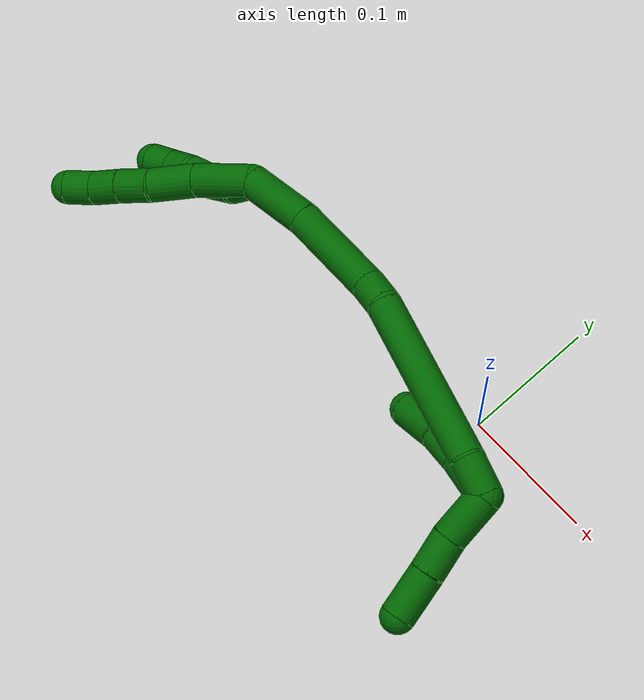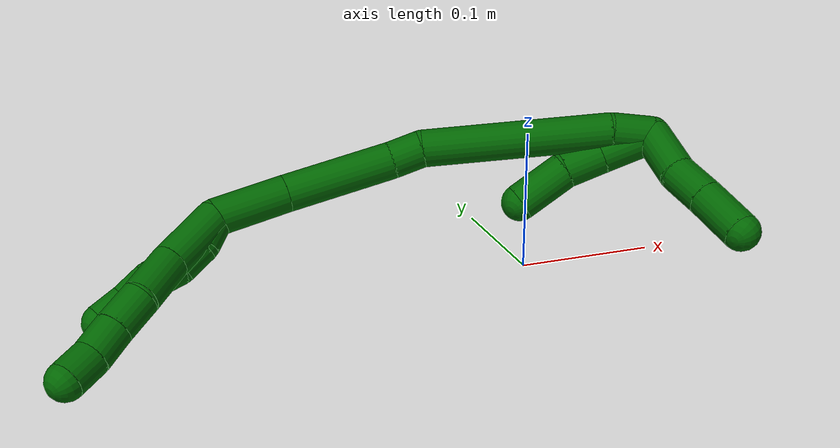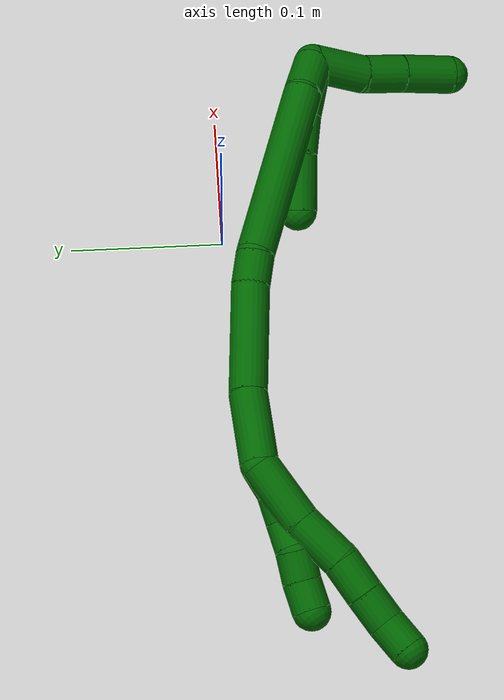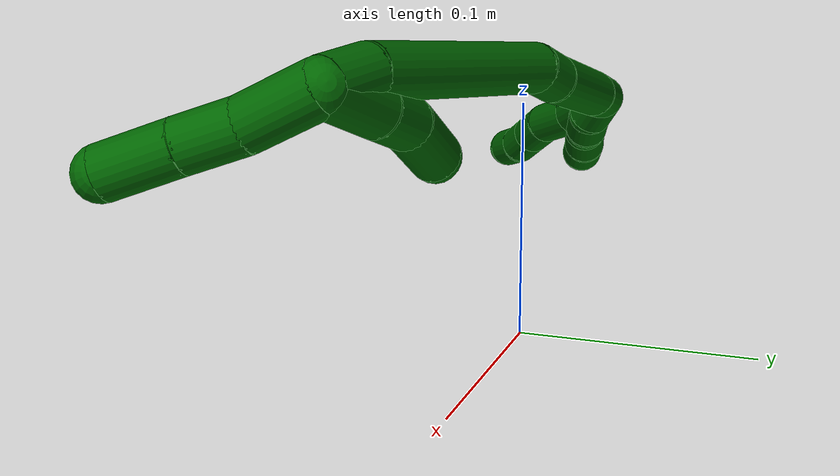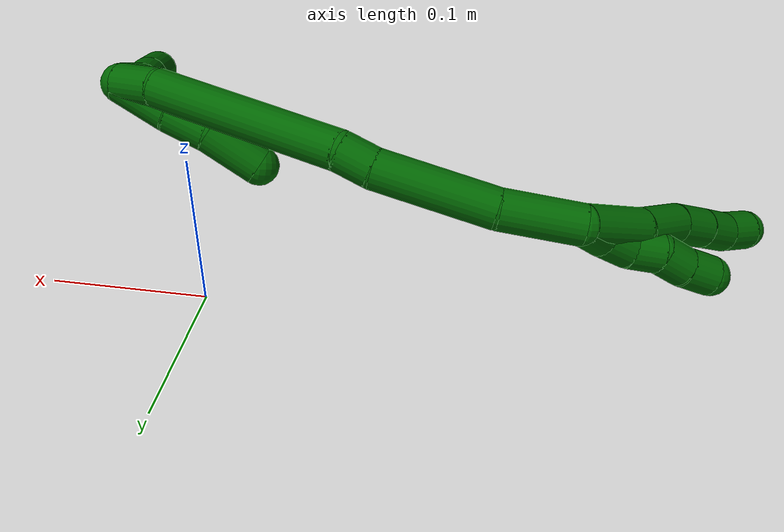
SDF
<sdf version="1.7">
 <world name="default">
  <model name="6">
   <static>0</static>
   <link name="6">
    <collision name="collision-cylinder-e_1_2_8">
     <pose>0.000996 -0.002364 0.022287 0.105687 0.044422 0.00235</pose>
     <geometry><cylinder><radius>0.0125</radius><length>0.044869</length></cylinder></geometry>
     <surface>
      <friction><ode><mu>1.16</mu><mu2>1.16</mu2><slip1>0</slip1><slip2>0</slip2></ode></friction>
      <contact><ode><kp>1e+06</kp><kd>1</kd><max_vel>0</max_vel><min_depth>0.001</min_depth></ode></contact>
     </surface>
    </collision>
    <visual name="visual-cylinder-e_1_2_8">
     <pose>0.000996 -0.002364 0.022287 0.105687 0.044422 0.00235</pose>
     <geometry><cylinder><radius>0.0125</radius><length>0.044869</length></cylinder></geometry>
     <material><ambient>0 0.392157 0.003922 1</ambient></material>
    </visual>
    <collision name="collision-cylinder-e_2_8_9">
     <pose>0.005662 -0.00578 0.061475 0.062155 0.213391 0.006659</pose>
     <geometry><cylinder><radius>0.0125</radius><length>0.034652</length></cylinder></geometry>
     <surface>
      <friction><ode><mu>1.16</mu><mu2>1.16</mu2><slip1>0</slip1><slip2>0</slip2></ode></friction>
      <contact><ode><kp>1e+06</kp><kd>1</kd><max_vel>0</max_vel><min_depth>0.001</min_depth></ode></contact>
     </surface>
    </collision>
    <visual name="visual-cylinder-e_2_8_9">
     <pose>0.005662 -0.00578 0.061475 0.062155 0.213391 0.006659</pose>
     <geometry><cylinder><radius>0.0125</radius><length>0.034652</length></cylinder></geometry>
     <material><ambient>0 0.392157 0.003922 1</ambient></material>
    </visual>
    <collision name="collision-cylinder-e_3_9_10">
     <pose>0.009977 -0.00915 0.090964 0.182076 0.050389 0.004601</pose>
     <geometry><cylinder><radius>0.0125</radius><length>0.025632</length></cylinder></geometry>
     <surface>
      <friction><ode><mu>1.16</mu><mu2>1.16</mu2><slip1>0</slip1><slip2>0</slip2></ode></friction>
      <contact><ode><kp>1e+06</kp><kd>1</kd><max_vel>0</max_vel><min_depth>0.001</min_depth></ode></contact>
     </surface>
    </collision>
    <visual name="visual-cylinder-e_3_9_10">
     <pose>0.009977 -0.00915 0.090964 0.182076 0.050389 0.004601</pose>
     <geometry><cylinder><radius>0.0125</radius><length>0.025632</length></cylinder></geometry>
     <material><ambient>0 0.392157 0.003922 1</ambient></material>
    </visual>
    <collision name="collision-cylinder-e_4_10_11">
     <pose>0.011585 -0.013888 0.114718 0.213466 0.084118 0.009018</pose>
     <geometry><cylinder><radius>0.0125</radius><length>0.022931</length></cylinder></geometry>
     <surface>
      <friction><ode><mu>1.16</mu><mu2>1.16</mu2><slip1>0</slip1><slip2>0</slip2></ode></friction>
      <contact><ode><kp>1e+06</kp><kd>1</kd><max_vel>0</max_vel><min_depth>0.001</min_depth></ode></contact>
     </surface>
    </collision>
    <visual name="visual-cylinder-e_4_10_11">
     <pose>0.011585 -0.013888 0.114718 0.213466 0.084118 0.009018</pose>
     <geometry><cylinder><radius>0.0125</radius><length>0.022931</length></cylinder></geometry>
     <material><ambient>0 0.392157 0.003922 1</ambient></material>
    </visual>
    <collision name="collision-cylinder-e_5_11_6">
     <pose>0.013509 -0.016515 0.136797 0.018921 0.087789 0.000831</pose>
     <geometry><cylinder><radius>0.0125</radius><length>0.021915</length></cylinder></geometry>
     <surface>
      <friction><ode><mu>1.16</mu><mu2>1.16</mu2><slip1>0</slip1><slip2>0</slip2></ode></friction>
      <contact><ode><kp>1e+06</kp><kd>1</kd><max_vel>0</max_vel><min_depth>0.001</min_depth></ode></contact>
     </surface>
    </collision>
    <visual name="visual-cylinder-e_5_11_6">
     <pose>0.013509 -0.016515 0.136797 0.018921 0.087789 0.000831</pose>
     <geometry><cylinder><radius>0.0125</radius><length>0.021915</length></cylinder></geometry>
     <material><ambient>0 0.392157 0.003922 1</ambient></material>
    </visual>
    <collision name="collision-cylinder-e_1_2_12">
     <pose>0.000753 -0.004451 0.008923 0.462718 0.07534 0.017756</pose>
     <geometry><cylinder><radius>0.0125</radius><length>0.02</length></cylinder></geometry>
     <surface>
      <friction><ode><mu>1.16</mu><mu2>1.16</mu2><slip1>0</slip1><slip2>0</slip2></ode></friction>
      <contact><ode><kp>1e+06</kp><kd>1</kd><max_vel>0</max_vel><min_depth>0.001</min_depth></ode></contact>
     </surface>
    </collision>
    <visual name="visual-cylinder-e_1_2_12">
     <pose>0.000753 -0.004451 0.008923 0.462718 0.07534 0.017756</pose>
     <geometry><cylinder><radius>0.0125</radius><length>0.02</length></cylinder></geometry>
     <material><ambient>0 0.392157 0.003922 1</ambient></material>
    </visual>
    <collision name="collision-cylinder-e_2_12_13">
     <pose>-0.000735 -0.01185 0.027135 0.307287 -0.225923 -0.035133</pose>
     <geometry><cylinder><radius>0.0125</radius><length>0.02</length></cylinder></geometry>
     <surface>
      <friction><ode><mu>1.16</mu><mu2>1.16</mu2><slip1>0</slip1><slip2>0</slip2></ode></friction>
      <contact><ode><kp>1e+06</kp><kd>1</kd><max_vel>0</max_vel><min_depth>0.001</min_depth></ode></contact>
     </surface>
    </collision>
    <visual name="visual-cylinder-e_2_12_13">
     <pose>-0.000735 -0.01185 0.027135 0.307287 -0.225923 -0.035133</pose>
     <geometry><cylinder><radius>0.0125</radius><length>0.02</length></cylinder></geometry>
     <material><ambient>0 0.392157 0.003922 1</ambient></material>
    </visual>
    <collision name="collision-cylinder-e_3_13_14">
     <pose>-0.006047 -0.014811 0.045941 0.001328 -0.312311 -0.000209</pose>
     <geometry><cylinder><radius>0.0125</radius><length>0.02</length></cylinder></geometry>
     <surface>
      <friction><ode><mu>1.16</mu><mu2>1.16</mu2><slip1>0</slip1><slip2>0</slip2></ode></friction>
      <contact><ode><kp>1e+06</kp><kd>1</kd><max_vel>0</max_vel><min_depth>0.001</min_depth></ode></contact>
     </surface>
    </collision>
    <visual name="visual-cylinder-e_3_13_14">
     <pose>-0.006047 -0.014811 0.045941 0.001328 -0.312311 -0.000209</pose>
     <geometry><cylinder><radius>0.0125</radius><length>0.02</length></cylinder></geometry>
     <material><ambient>0 0.392157 0.003922 1</ambient></material>
    </visual>
    <collision name="collision-cylinder-e_4_14_15">
     <pose>-0.012065 -0.018233 0.064385 0.364797 -0.298928 -0.055537</pose>
     <geometry><cylinder><radius>0.0125</radius><length>0.02</length></cylinder></geometry>
     <surface>
      <friction><ode><mu>1.16</mu><mu2>1.16</mu2><slip1>0</slip1><slip2>0</slip2></ode></friction>
      <contact><ode><kp>1e+06</kp><kd>1</kd><max_vel>0</max_vel><min_depth>0.001</min_depth></ode></contact>
     </surface>
    </collision>
    <visual name="visual-cylinder-e_4_14_15">
     <pose>-0.012065 -0.018233 0.064385 0.364797 -0.298928 -0.055537</pose>
     <geometry><cylinder><radius>0.0125</radius><length>0.02</length></cylinder></geometry>
     <material><ambient>0 0.392157 0.003922 1</ambient></material>
    </visual>
    <collision name="collision-cylinder-e_5_15_5">
     <pose>-0.017517 -0.023544 0.082804 0.197789 -0.253447 -0.025281</pose>
     <geometry><cylinder><radius>0.0125</radius><length>0.02</length></cylinder></geometry>
     <surface>
      <friction><ode><mu>1.16</mu><mu2>1.16</mu2><slip1>0</slip1><slip2>0</slip2></ode></friction>
      <contact><ode><kp>1e+06</kp><kd>1</kd><max_vel>0</max_vel><min_depth>0.001</min_depth></ode></contact>
     </surface>
    </collision>
    <visual name="visual-cylinder-e_5_15_5">
     <pose>-0.017517 -0.023544 0.082804 0.197789 -0.253447 -0.025281</pose>
     <geometry><cylinder><radius>0.0125</radius><length>0.02</length></cylinder></geometry>
     <material><ambient>0 0.392157 0.003922 1</ambient></material>
    </visual>
    <collision name="collision-cylinder-e_1_2_16">
     <pose>0.0114 -0.001626 -0.022138 3.06829 0.474426 2.84056</pose>
     <geometry><cylinder><radius>0.0125</radius><length>0.049908</length></cylinder></geometry>
     <surface>
      <friction><ode><mu>1.16</mu><mu2>1.16</mu2><slip1>0</slip1><slip2>0</slip2></ode></friction>
      <contact><ode><kp>1e+06</kp><kd>1</kd><max_vel>0</max_vel><min_depth>0.001</min_depth></ode></contact>
     </surface>
    </collision>
    <visual name="visual-cylinder-e_1_2_16">
     <pose>0.0114 -0.001626 -0.022138 3.06829 0.474426 2.84056</pose>
     <geometry><cylinder><radius>0.0125</radius><length>0.049908</length></cylinder></geometry>
     <material><ambient>0 0.392157 0.003922 1</ambient></material>
    </visual>
    <collision name="collision-cylinder-e_2_16_17">
     <pose>0.044606 -0.003194 -0.074063 -3.13968 0.631956 -3.13573</pose>
     <geometry><cylinder><radius>0.0125</radius><length>0.073831</length></cylinder></geometry>
     <surface>
      <friction><ode><mu>1.16</mu><mu2>1.16</mu2><slip1>0</slip1><slip2>0</slip2></ode></friction>
      <contact><ode><kp>1e+06</kp><kd>1</kd><max_vel>0</max_vel><min_depth>0.001</min_depth></ode></contact>
     </surface>
    </collision>
    <visual name="visual-cylinder-e_2_16_17">
     <pose>0.044606 -0.003194 -0.074063 -3.13968 0.631956 -3.13573</pose>
     <geometry><cylinder><radius>0.0125</radius><length>0.073831</length></cylinder></geometry>
     <material><ambient>0 0.392157 0.003922 1</ambient></material>
    </visual>
    <collision name="collision-cylinder-e_3_17_18">
     <pose>0.073666 -0.001705 -0.111829 -2.96399 0.729818 -2.68364</pose>
     <geometry><cylinder><radius>0.0125</radius><length>0.021757</length></cylinder></geometry>
     <surface>
      <friction><ode><mu>1.16</mu><mu2>1.16</mu2><slip1>0</slip1><slip2>0</slip2></ode></friction>
      <contact><ode><kp>1e+06</kp><kd>1</kd><max_vel>0</max_vel><min_depth>0.001</min_depth></ode></contact>
     </surface>
    </collision>
    <visual name="visual-cylinder-e_3_17_18">
     <pose>0.073666 -0.001705 -0.111829 -2.96399 0.729818 -2.68364</pose>
     <geometry><cylinder><radius>0.0125</radius><length>0.021757</length></cylinder></geometry>
     <material><ambient>0 0.392157 0.003922 1</ambient></material>
    </visual>
    <collision name="collision-cylinder-e_4_18_19">
     <pose>0.129337 -0.006847 -0.160087 2.97979 0.870445 2.79632</pose>
     <geometry><cylinder><radius>0.0125</radius><length>0.126644</length></cylinder></geometry>
     <surface>
      <friction><ode><mu>1.16</mu><mu2>1.16</mu2><slip1>0</slip1><slip2>0</slip2></ode></friction>
      <contact><ode><kp>1e+06</kp><kd>1</kd><max_vel>0</max_vel><min_depth>0.001</min_depth></ode></contact>
     </surface>
    </collision>
    <visual name="visual-cylinder-e_4_18_19">
     <pose>0.129337 -0.006847 -0.160087 2.97979 0.870445 2.79632</pose>
     <geometry><cylinder><radius>0.0125</radius><length>0.126644</length></cylinder></geometry>
     <material><ambient>0 0.392157 0.003922 1</ambient></material>
    </visual>
    <collision name="collision-cylinder-e_5_19_1">
     <pose>0.188307 -0.017466 -0.208506 2.68054 0.859669 2.19523</pose>
     <geometry><cylinder><radius>0.0125</radius><length>0.027859</length></cylinder></geometry>
     <surface>
      <friction><ode><mu>1.16</mu><mu2>1.16</mu2><slip1>0</slip1><slip2>0</slip2></ode></friction>
      <contact><ode><kp>1e+06</kp><kd>1</kd><max_vel>0</max_vel><min_depth>0.001</min_depth></ode></contact>
     </surface>
    </collision>
    <visual name="visual-cylinder-e_5_19_1">
     <pose>0.188307 -0.017466 -0.208506 2.68054 0.859669 2.19523</pose>
     <geometry><cylinder><radius>0.0125</radius><length>0.027859</length></cylinder></geometry>
     <material><ambient>0 0.392157 0.003922 1</ambient></material>
    </visual>
    <collision name="collision-cylinder-e_1_1_20">
     <pose>0.213075 -0.027575 -0.206509 0.539039 0.877303 0.257752</pose>
     <geometry><cylinder><radius>0.0125</radius><length>0.036966</length></cylinder></geometry>
     <surface>
      <friction><ode><mu>1.16</mu><mu2>1.16</mu2><slip1>0</slip1><slip2>0</slip2></ode></friction>
      <contact><ode><kp>1e+06</kp><kd>1</kd><max_vel>0</max_vel><min_depth>0.001</min_depth></ode></contact>
     </surface>
    </collision>
    <visual name="visual-cylinder-e_1_1_20">
     <pose>0.213075 -0.027575 -0.206509 0.539039 0.877303 0.257752</pose>
     <geometry><cylinder><radius>0.0125</radius><length>0.036966</length></cylinder></geometry>
     <material><ambient>0 0.392157 0.003922 1</ambient></material>
    </visual>
    <collision name="collision-cylinder-e_2_20_21">
     <pose>0.239713 -0.037062 -0.190935 0.561948 1.09371 0.347853</pose>
     <geometry><cylinder><radius>0.0125</radius><length>0.027973</length></cylinder></geometry>
     <surface>
      <friction><ode><mu>1.16</mu><mu2>1.16</mu2><slip1>0</slip1><slip2>0</slip2></ode></friction>
      <contact><ode><kp>1e+06</kp><kd>1</kd><max_vel>0</max_vel><min_depth>0.001</min_depth></ode></contact>
     </surface>
    </collision>
    <visual name="visual-cylinder-e_2_20_21">
     <pose>0.239713 -0.037062 -0.190935 0.561948 1.09371 0.347853</pose>
     <geometry><cylinder><radius>0.0125</radius><length>0.027973</length></cylinder></geometry>
     <material><ambient>0 0.392157 0.003922 1</ambient></material>
    </visual>
    <collision name="collision-cylinder-e_3_21_4">
     <pose>0.267393 -0.044936 -0.178097 0.541429 1.05556 0.320783</pose>
     <geometry><cylinder><radius>0.0125</radius><length>0.035061</length></cylinder></geometry>
     <surface>
      <friction><ode><mu>1.16</mu><mu2>1.16</mu2><slip1>0</slip1><slip2>0</slip2></ode></friction>
      <contact><ode><kp>1e+06</kp><kd>1</kd><max_vel>0</max_vel><min_depth>0.001</min_depth></ode></contact>
     </surface>
    </collision>
    <visual name="visual-cylinder-e_3_21_4">
     <pose>0.267393 -0.044936 -0.178097 0.541429 1.05556 0.320783</pose>
     <geometry><cylinder><radius>0.0125</radius><length>0.035061</length></cylinder></geometry>
     <material><ambient>0 0.392157 0.003922 1</ambient></material>
    </visual>
    <collision name="collision-cylinder-e_1_1_22">
     <pose>0.186174 -0.024756 -0.204011 0.251373 -0.771359 -0.102512</pose>
     <geometry><cylinder><radius>0.0125</radius><length>0.036398</length></cylinder></geometry>
     <surface>
      <friction><ode><mu>1.16</mu><mu2>1.16</mu2><slip1>0</slip1><slip2>0</slip2></ode></friction>
      <contact><ode><kp>1e+06</kp><kd>1</kd><max_vel>0</max_vel><min_depth>0.001</min_depth></ode></contact>
     </surface>
    </collision>
    <visual name="visual-cylinder-e_1_1_22">
     <pose>0.186174 -0.024756 -0.204011 0.251373 -0.771359 -0.102512</pose>
     <geometry><cylinder><radius>0.0125</radius><length>0.036398</length></cylinder></geometry>
     <material><ambient>0 0.392157 0.003922 1</ambient></material>
    </visual>
    <collision name="collision-cylinder-e_2_22_23">
     <pose>0.165016 -0.029745 -0.181193 0.169635 -0.686983 -0.060801</pose>
     <geometry><cylinder><radius>0.0125</radius><length>0.026715</length></cylinder></geometry>
     <surface>
      <friction><ode><mu>1.16</mu><mu2>1.16</mu2><slip1>0</slip1><slip2>0</slip2></ode></friction>
      <contact><ode><kp>1e+06</kp><kd>1</kd><max_vel>0</max_vel><min_depth>0.001</min_depth></ode></contact>
     </surface>
    </collision>
    <visual name="visual-cylinder-e_2_22_23">
     <pose>0.165016 -0.029745 -0.181193 0.169635 -0.686983 -0.060801</pose>
     <geometry><cylinder><radius>0.0125</radius><length>0.026715</length></cylinder></geometry>
     <material><ambient>0 0.392157 0.003922 1</ambient></material>
    </visual>
    <collision name="collision-cylinder-e_3_23_3">
     <pose>0.147113 -0.037584 -0.156384 0.394766 -0.536774 -0.109891</pose>
     <geometry><cylinder><radius>0.0125</radius><length>0.036887</length></cylinder></geometry>
     <surface>
      <friction><ode><mu>1.16</mu><mu2>1.16</mu2><slip1>0</slip1><slip2>0</slip2></ode></friction>
      <contact><ode><kp>1e+06</kp><kd>1</kd><max_vel>0</max_vel><min_depth>0.001</min_depth></ode></contact>
     </surface>
    </collision>
    <visual name="visual-cylinder-e_3_23_3">
     <pose>0.147113 -0.037584 -0.156384 0.394766 -0.536774 -0.109891</pose>
     <geometry><cylinder><radius>0.0125</radius><length>0.036887</length></cylinder></geometry>
     <material><ambient>0 0.392157 0.003922 1</ambient></material>
    </visual>
    <collision name="collision-sphere-3">
     <pose>0.137682 -0.04368 -0.141753 0 -0 0</pose>
     <geometry><sphere><radius>0.0125</radius></sphere></geometry>
     <surface>
      <friction><ode><mu>1.16</mu><mu2>1.16</mu2><slip1>0</slip1><slip2>0</slip2></ode></friction>
      <contact><ode><kp>1e+06</kp><kd>1</kd><max_vel>0</max_vel><min_depth>0.001</min_depth></ode></contact>
     </surface>
    </collision>
    <visual name="visual-sphere-3">
     <pose>0.137682 -0.04368 -0.141753 0 -0 0</pose>
     <geometry><sphere><radius>0.0125</radius></sphere></geometry>
     <material><ambient>0 0.392157 0.003922 1</ambient></material>
    </visual>
    <collision name="collision-sphere-23">
     <pose>0.156545 -0.031489 -0.171014 0 -0 0</pose>
     <geometry><sphere><radius>0.0125</radius></sphere></geometry>
     <surface>
      <friction><ode><mu>1.16</mu><mu2>1.16</mu2><slip1>0</slip1><slip2>0</slip2></ode></friction>
      <contact><ode><kp>1e+06</kp><kd>1</kd><max_vel>0</max_vel><min_depth>0.001</min_depth></ode></contact>
     </surface>
    </collision>
    <visual name="visual-sphere-23">
     <pose>0.156545 -0.031489 -0.171014 0 -0 0</pose>
     <geometry><sphere><radius>0.0125</radius></sphere></geometry>
     <material><ambient>0 0.392157 0.003922 1</ambient></material>
    </visual>
    <collision name="collision-sphere-22">
     <pose>0.173487 -0.028002 -0.191373 0 -0 0</pose>
     <geometry><sphere><radius>0.0125</radius></sphere></geometry>
     <surface>
      <friction><ode><mu>1.16</mu><mu2>1.16</mu2><slip1>0</slip1><slip2>0</slip2></ode></friction>
      <contact><ode><kp>1e+06</kp><kd>1</kd><max_vel>0</max_vel><min_depth>0.001</min_depth></ode></contact>
     </surface>
    </collision>
    <visual name="visual-sphere-22">
     <pose>0.173487 -0.028002 -0.191373 0 -0 0</pose>
     <geometry><sphere><radius>0.0125</radius></sphere></geometry>
     <material><ambient>0 0.392157 0.003922 1</ambient></material>
    </visual>
    <collision name="collision-sphere-4">
     <pose>0.282647 -0.049388 -0.170695 0 -0 0</pose>
     <geometry><sphere><radius>0.0125</radius></sphere></geometry>
     <surface>
      <friction><ode><mu>1.16</mu><mu2>1.16</mu2><slip1>0</slip1><slip2>0</slip2></ode></friction>
      <contact><ode><kp>1e+06</kp><kd>1</kd><max_vel>0</max_vel><min_depth>0.001</min_depth></ode></contact>
     </surface>
    </collision>
    <visual name="visual-sphere-4">
     <pose>0.282647 -0.049388 -0.170695 0 -0 0</pose>
     <geometry><sphere><radius>0.0125</radius></sphere></geometry>
     <material><ambient>0 0.392157 0.003922 1</ambient></material>
    </visual>
    <collision name="collision-sphere-21">
     <pose>0.252138 -0.040484 -0.1855 0 -0 0</pose>
     <geometry><sphere><radius>0.0125</radius></sphere></geometry>
     <surface>
      <friction><ode><mu>1.16</mu><mu2>1.16</mu2><slip1>0</slip1><slip2>0</slip2></ode></friction>
      <contact><ode><kp>1e+06</kp><kd>1</kd><max_vel>0</max_vel><min_depth>0.001</min_depth></ode></contact>
     </surface>
    </collision>
    <visual name="visual-sphere-21">
     <pose>0.252138 -0.040484 -0.1855 0 -0 0</pose>
     <geometry><sphere><radius>0.0125</radius></sphere></geometry>
     <material><ambient>0 0.392157 0.003922 1</ambient></material>
    </visual>
    <collision name="collision-sphere-20">
     <pose>0.227288 -0.03364 -0.19637 0 -0 0</pose>
     <geometry><sphere><radius>0.0125</radius></sphere></geometry>
     <surface>
      <friction><ode><mu>1.16</mu><mu2>1.16</mu2><slip1>0</slip1><slip2>0</slip2></ode></friction>
      <contact><ode><kp>1e+06</kp><kd>1</kd><max_vel>0</max_vel><min_depth>0.001</min_depth></ode></contact>
     </surface>
    </collision>
    <visual name="visual-sphere-20">
     <pose>0.227288 -0.03364 -0.19637 0 -0 0</pose>
     <geometry><sphere><radius>0.0125</radius></sphere></geometry>
     <material><ambient>0 0.392157 0.003922 1</ambient></material>
    </visual>
    <collision name="collision-sphere-6">
     <pose>0.01447 -0.016721 0.147711 0 -0 0</pose>
     <geometry><sphere><radius>0.0125</radius></sphere></geometry>
     <surface>
      <friction><ode><mu>1.16</mu><mu2>1.16</mu2><slip1>0</slip1><slip2>0</slip2></ode></friction>
      <contact><ode><kp>1e+06</kp><kd>1</kd><max_vel>0</max_vel><min_depth>0.001</min_depth></ode></contact>
     </surface>
    </collision>
    <visual name="visual-sphere-6">
     <pose>0.01447 -0.016721 0.147711 0 -0 0</pose>
     <geometry><sphere><radius>0.0125</radius></sphere></geometry>
     <material><ambient>0 0.392157 0.003922 1</ambient></material>
    </visual>
    <collision name="collision-sphere-11">
     <pose>0.012549 -0.016308 0.125883 0 -0 0</pose>
     <geometry><sphere><radius>0.0125</radius></sphere></geometry>
     <surface>
      <friction><ode><mu>1.16</mu><mu2>1.16</mu2><slip1>0</slip1><slip2>0</slip2></ode></friction>
      <contact><ode><kp>1e+06</kp><kd>1</kd><max_vel>0</max_vel><min_depth>0.001</min_depth></ode></contact>
     </surface>
    </collision>
    <visual name="visual-sphere-11">
     <pose>0.012549 -0.016308 0.125883 0 -0 0</pose>
     <geometry><sphere><radius>0.0125</radius></sphere></geometry>
     <material><ambient>0 0.392157 0.003922 1</ambient></material>
    </visual>
    <collision name="collision-sphere-10">
     <pose>0.010622 -0.011468 0.103552 0 -0 0</pose>
     <geometry><sphere><radius>0.0125</radius></sphere></geometry>
     <surface>
      <friction><ode><mu>1.16</mu><mu2>1.16</mu2><slip1>0</slip1><slip2>0</slip2></ode></friction>
      <contact><ode><kp>1e+06</kp><kd>1</kd><max_vel>0</max_vel><min_depth>0.001</min_depth></ode></contact>
     </surface>
    </collision>
    <visual name="visual-sphere-10">
     <pose>0.010622 -0.011468 0.103552 0 -0 0</pose>
     <geometry><sphere><radius>0.0125</radius></sphere></geometry>
     <material><ambient>0 0.392157 0.003922 1</ambient></material>
    </visual>
    <collision name="collision-sphere-9">
     <pose>0.009331 -0.006832 0.078376 0 -0 0</pose>
     <geometry><sphere><radius>0.0125</radius></sphere></geometry>
     <surface>
      <friction><ode><mu>1.16</mu><mu2>1.16</mu2><slip1>0</slip1><slip2>0</slip2></ode></friction>
      <contact><ode><kp>1e+06</kp><kd>1</kd><max_vel>0</max_vel><min_depth>0.001</min_depth></ode></contact>
     </surface>
    </collision>
    <visual name="visual-sphere-9">
     <pose>0.009331 -0.006832 0.078376 0 -0 0</pose>
     <geometry><sphere><radius>0.0125</radius></sphere></geometry>
     <material><ambient>0 0.392157 0.003922 1</ambient></material>
    </visual>
    <collision name="collision-sphere-2">
     <geometry><sphere><radius>0.0125</radius></sphere></geometry>
     <surface>
      <friction><ode><mu>1.16</mu><mu2>1.16</mu2><slip1>0</slip1><slip2>0</slip2></ode></friction>
      <contact><ode><kp>1e+06</kp><kd>1</kd><max_vel>0</max_vel><min_depth>0.001</min_depth></ode></contact>
     </surface>
    </collision>
    <visual name="visual-sphere-2">
     <geometry><sphere><radius>0.0125</radius></sphere></geometry>
     <material><ambient>0 0.392157 0.003922 1</ambient></material>
    </visual>
    <collision name="collision-sphere-19">
     <pose>0.177754 -0.013421 -0.200364 0 -0 0</pose>
     <geometry><sphere><radius>0.0125</radius></sphere></geometry>
     <surface>
      <friction><ode><mu>1.16</mu><mu2>1.16</mu2><slip1>0</slip1><slip2>0</slip2></ode></friction>
      <contact><ode><kp>1e+06</kp><kd>1</kd><max_vel>0</max_vel><min_depth>0.001</min_depth></ode></contact>
     </surface>
    </collision>
    <visual name="visual-sphere-19">
     <pose>0.177754 -0.013421 -0.200364 0 -0 0</pose>
     <geometry><sphere><radius>0.0125</radius></sphere></geometry>
     <material><ambient>0 0.392157 0.003922 1</ambient></material>
    </visual>
    <collision name="collision-sphere-8">
     <pose>0.001993 -0.004729 0.044575 0 -0 0</pose>
     <geometry><sphere><radius>0.0125</radius></sphere></geometry>
     <surface>
      <friction><ode><mu>1.16</mu><mu2>1.16</mu2><slip1>0</slip1><slip2>0</slip2></ode></friction>
      <contact><ode><kp>1e+06</kp><kd>1</kd><max_vel>0</max_vel><min_depth>0.001</min_depth></ode></contact>
     </surface>
    </collision>
    <visual name="visual-sphere-8">
     <pose>0.001993 -0.004729 0.044575 0 -0 0</pose>
     <geometry><sphere><radius>0.0125</radius></sphere></geometry>
     <material><ambient>0 0.392157 0.003922 1</ambient></material>
    </visual>
    <collision name="collision-sphere-12">
     <pose>0.001505 -0.008902 0.017846 0 -0 0</pose>
     <geometry><sphere><radius>0.0125</radius></sphere></geometry>
     <surface>
      <friction><ode><mu>1.16</mu><mu2>1.16</mu2><slip1>0</slip1><slip2>0</slip2></ode></friction>
      <contact><ode><kp>1e+06</kp><kd>1</kd><max_vel>0</max_vel><min_depth>0.001</min_depth></ode></contact>
     </surface>
    </collision>
    <visual name="visual-sphere-12">
     <pose>0.001505 -0.008902 0.017846 0 -0 0</pose>
     <geometry><sphere><radius>0.0125</radius></sphere></geometry>
     <material><ambient>0 0.392157 0.003922 1</ambient></material>
    </visual>
    <collision name="collision-sphere-13">
     <pose>-0.002975 -0.014798 0.036425 0 -0 0</pose>
     <geometry><sphere><radius>0.0125</radius></sphere></geometry>
     <surface>
      <friction><ode><mu>1.16</mu><mu2>1.16</mu2><slip1>0</slip1><slip2>0</slip2></ode></friction>
      <contact><ode><kp>1e+06</kp><kd>1</kd><max_vel>0</max_vel><min_depth>0.001</min_depth></ode></contact>
     </surface>
    </collision>
    <visual name="visual-sphere-13">
     <pose>-0.002975 -0.014798 0.036425 0 -0 0</pose>
     <geometry><sphere><radius>0.0125</radius></sphere></geometry>
     <material><ambient>0 0.392157 0.003922 1</ambient></material>
    </visual>
    <collision name="collision-sphere-14">
     <pose>-0.00912 -0.014823 0.055457 0 -0 0</pose>
     <geometry><sphere><radius>0.0125</radius></sphere></geometry>
     <surface>
      <friction><ode><mu>1.16</mu><mu2>1.16</mu2><slip1>0</slip1><slip2>0</slip2></ode></friction>
      <contact><ode><kp>1e+06</kp><kd>1</kd><max_vel>0</max_vel><min_depth>0.001</min_depth></ode></contact>
     </surface>
    </collision>
    <visual name="visual-sphere-14">
     <pose>-0.00912 -0.014823 0.055457 0 -0 0</pose>
     <geometry><sphere><radius>0.0125</radius></sphere></geometry>
     <material><ambient>0 0.392157 0.003922 1</ambient></material>
    </visual>
    <collision name="collision-sphere-15">
     <pose>-0.01501 -0.021642 0.073313 0 -0 0</pose>
     <geometry><sphere><radius>0.0125</radius></sphere></geometry>
     <surface>
      <friction><ode><mu>1.16</mu><mu2>1.16</mu2><slip1>0</slip1><slip2>0</slip2></ode></friction>
      <contact><ode><kp>1e+06</kp><kd>1</kd><max_vel>0</max_vel><min_depth>0.001</min_depth></ode></contact>
     </surface>
    </collision>
    <visual name="visual-sphere-15">
     <pose>-0.01501 -0.021642 0.073313 0 -0 0</pose>
     <geometry><sphere><radius>0.0125</radius></sphere></geometry>
     <material><ambient>0 0.392157 0.003922 1</ambient></material>
    </visual>
    <collision name="collision-sphere-5">
     <pose>-0.020025 -0.025447 0.092296 0 -0 0</pose>
     <geometry><sphere><radius>0.0125</radius></sphere></geometry>
     <surface>
      <friction><ode><mu>1.16</mu><mu2>1.16</mu2><slip1>0</slip1><slip2>0</slip2></ode></friction>
      <contact><ode><kp>1e+06</kp><kd>1</kd><max_vel>0</max_vel><min_depth>0.001</min_depth></ode></contact>
     </surface>
    </collision>
    <visual name="visual-sphere-5">
     <pose>-0.020025 -0.025447 0.092296 0 -0 0</pose>
     <geometry><sphere><radius>0.0125</radius></sphere></geometry>
     <material><ambient>0 0.392157 0.003922 1</ambient></material>
    </visual>
    <collision name="collision-sphere-16">
     <pose>0.022799 -0.003251 -0.044277 0 -0 0</pose>
     <geometry><sphere><radius>0.0125</radius></sphere></geometry>
     <surface>
      <friction><ode><mu>1.16</mu><mu2>1.16</mu2><slip1>0</slip1><slip2>0</slip2></ode></friction>
      <contact><ode><kp>1e+06</kp><kd>1</kd><max_vel>0</max_vel><min_depth>0.001</min_depth></ode></contact>
     </surface>
    </collision>
    <visual name="visual-sphere-16">
     <pose>0.022799 -0.003251 -0.044277 0 -0 0</pose>
     <geometry><sphere><radius>0.0125</radius></sphere></geometry>
     <material><ambient>0 0.392157 0.003922 1</ambient></material>
    </visual>
    <collision name="collision-sphere-17">
     <pose>0.066413 -0.003137 -0.103849 0 -0 0</pose>
     <geometry><sphere><radius>0.0125</radius></sphere></geometry>
     <surface>
      <friction><ode><mu>1.16</mu><mu2>1.16</mu2><slip1>0</slip1><slip2>0</slip2></ode></friction>
      <contact><ode><kp>1e+06</kp><kd>1</kd><max_vel>0</max_vel><min_depth>0.001</min_depth></ode></contact>
     </surface>
    </collision>
    <visual name="visual-sphere-17">
     <pose>0.066413 -0.003137 -0.103849 0 -0 0</pose>
     <geometry><sphere><radius>0.0125</radius></sphere></geometry>
     <material><ambient>0 0.392157 0.003922 1</ambient></material>
    </visual>
    <collision name="collision-sphere-18">
     <pose>0.080919 -0.000272 -0.119809 0 -0 0</pose>
     <geometry><sphere><radius>0.0125</radius></sphere></geometry>
     <surface>
      <friction><ode><mu>1.16</mu><mu2>1.16</mu2><slip1>0</slip1><slip2>0</slip2></ode></friction>
      <contact><ode><kp>1e+06</kp><kd>1</kd><max_vel>0</max_vel><min_depth>0.001</min_depth></ode></contact>
     </surface>
    </collision>
    <visual name="visual-sphere-18">
     <pose>0.080919 -0.000272 -0.119809 0 -0 0</pose>
     <geometry><sphere><radius>0.0125</radius></sphere></geometry>
     <material><ambient>0 0.392157 0.003922 1</ambient></material>
    </visual>
    <collision name="collision-sphere-1">
     <pose>0.198861 -0.021511 -0.216649 0 -0 0</pose>
     <geometry><sphere><radius>0.0125</radius></sphere></geometry>
     <surface>
      <friction><ode><mu>1.16</mu><mu2>1.16</mu2><slip1>0</slip1><slip2>0</slip2></ode></friction>
      <contact><ode><kp>1e+06</kp><kd>1</kd><max_vel>0</max_vel><min_depth>0.001</min_depth></ode></contact>
     </surface>
    </collision>
    <visual name="visual-sphere-1">
     <pose>0.198861 -0.021511 -0.216649 0 -0 0</pose>
     <geometry><sphere><radius>0.0125</radius></sphere></geometry>
     <material><ambient>0 0.392157 0.003922 1</ambient></material>
    </visual>
    <inertial>
     <pose>0.090674 -0.014801 -0.075558 0 -0 0</pose>
     <mass>0.75</mass>
     <inertia>
      <ixx>-4.3e-05</ixx>
      <ixy>0</ixy>
      <ixz>0</ixz>
      <iyy>0.000308</iyy>
      <iyz>0</iyz>
      <izz>-0.000125</izz>
     </inertia>
    </inertial>
   </link>
   <pose>-0.22587 -0.012388 0.071933 1.83435 -0.021305 -0.999422</pose>
  </model>
 </world>
</sdf>
